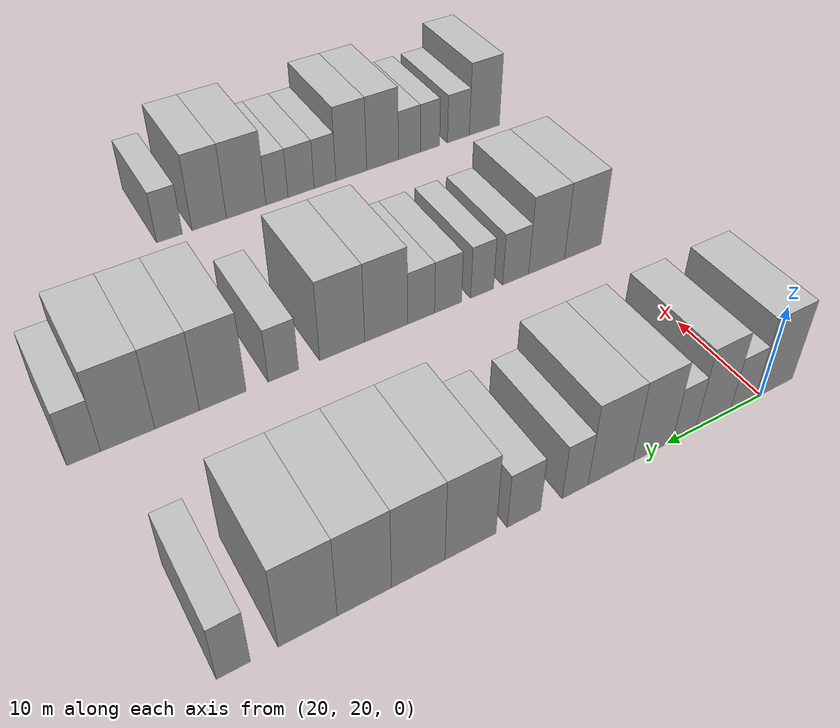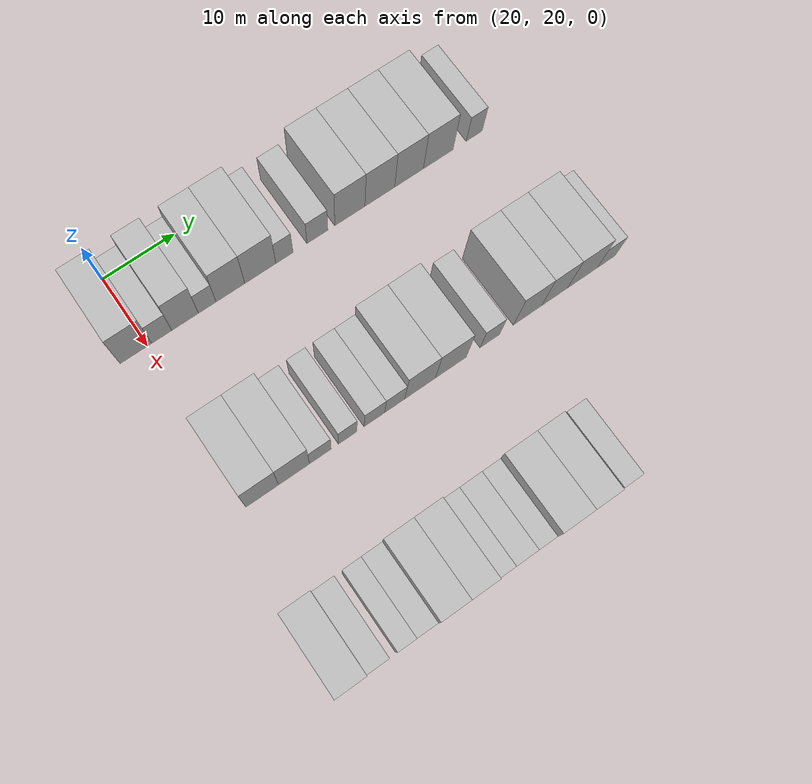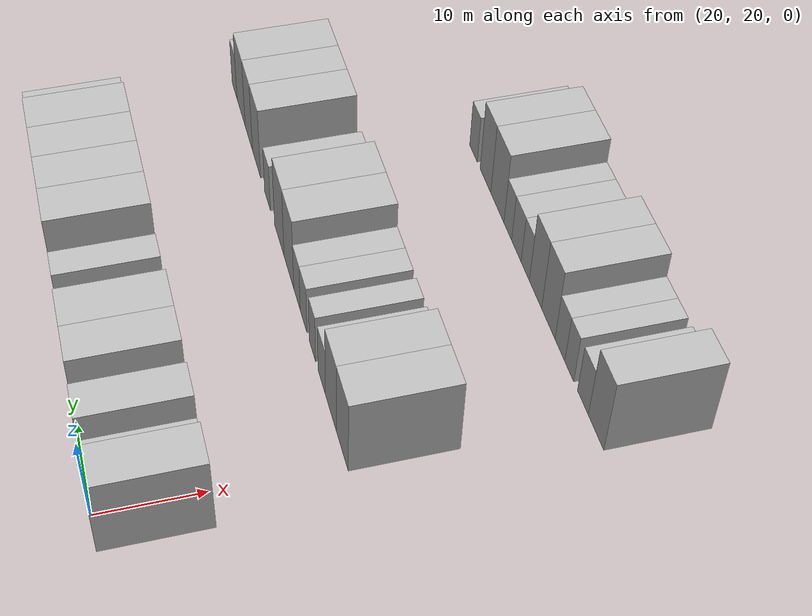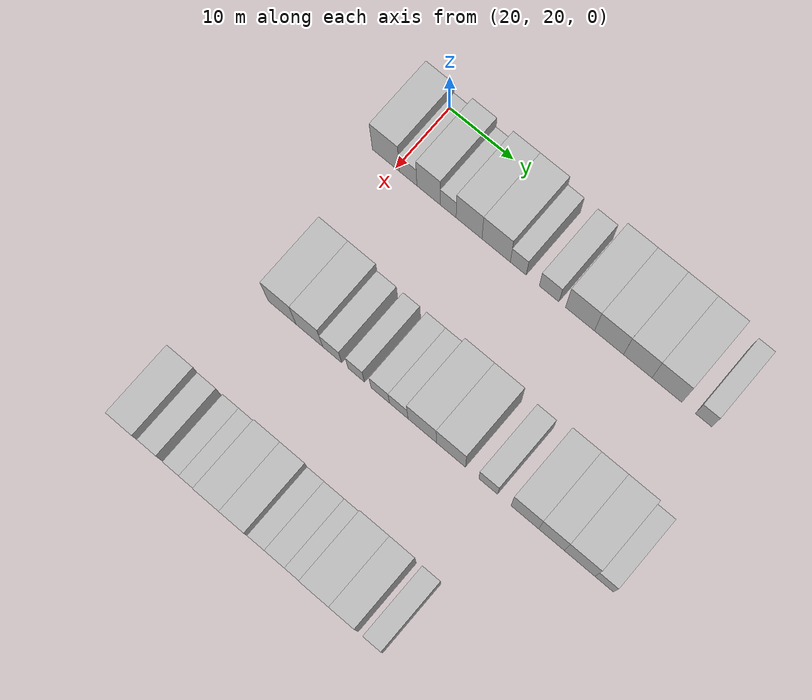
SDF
<sdf version="1.6">
 <world name="default">
  <model name="building_100">
   <static>1</static>
   <pose>25.0000 18.4840 0 0.000000 0.000000 0.000000</pose>
   <link name="link">
    <pose>0 0 4.50 0 0 0</pose>
    <collision name="collision"><geometry><box><size>10.0000 4.2667 9.0000</size></box></geometry></collision>
    <visual name="visual">
     <cast_shadows>0</cast_shadows>
     <geometry><box><size>10.0000 4.2667 9.0000</size></box></geometry>
     <material>
      <script>
       <uri>model://HANNAS_wall/materials/scripts</uri>
       <uri>model://HANNAS_wall/materials/textures</uri>
       <name>vrc/HANNAS_wall</name>
      </script>
     </material>
    </visual>
   </link>
  </model>
  <model name="building_101">
   <static>1</static>
   <pose>25.0000 21.9863 0 0.000000 0.000000 0.000000</pose>
   <link name="link">
    <pose>0 0 3.00 0 0 0</pose>
    <collision name="collision"><geometry><box><size>10.0000 2.7380 6.0000</size></box></geometry></collision>
    <visual name="visual">
     <cast_shadows>0</cast_shadows>
     <geometry><box><size>10.0000 2.7380 6.0000</size></box></geometry>
     <material>
      <script>
       <uri>model://HANNAS_wall/materials/scripts</uri>
       <uri>model://HANNAS_wall/materials/textures</uri>
       <name>vrc/HANNAS_wall</name>
      </script>
     </material>
    </visual>
   </link>
  </model>
  <model name="building_102">
   <static>1</static>
   <pose>25.0000 25.1922 0 0.000000 0.000000 0.000000</pose>
   <link name="link">
    <pose>0 0 4.50 0 0 0</pose>
    <collision name="collision"><geometry><box><size>10.0000 3.6737 9.0000</size></box></geometry></collision>
    <visual name="visual">
     <cast_shadows>0</cast_shadows>
     <geometry><box><size>10.0000 3.6737 9.0000</size></box></geometry>
     <material>
      <script>
       <uri>model://HANNAS_wall/materials/scripts</uri>
       <uri>model://HANNAS_wall/materials/textures</uri>
       <name>vrc/HANNAS_wall</name>
      </script>
     </material>
    </visual>
   </link>
  </model>
  <model name="building_103">
   <static>1</static>
   <pose>25.0000 28.2496 0 0.000000 0.000000 0.000000</pose>
   <link name="link">
    <pose>0 0 3.00 0 0 0</pose>
    <collision name="collision"><geometry><box><size>10.0000 2.4411 6.0000</size></box></geometry></collision>
    <visual name="visual">
     <cast_shadows>0</cast_shadows>
     <geometry><box><size>10.0000 2.4411 6.0000</size></box></geometry>
     <material>
      <script>
       <uri>model://HANNAS_wall/materials/scripts</uri>
       <uri>model://HANNAS_wall/materials/textures</uri>
       <name>vrc/HANNAS_wall</name>
      </script>
     </material>
    </visual>
   </link>
  </model>
  <model name="building_104">
   <static>1</static>
   <pose>25.0000 31.4704 0 0.000000 0.000000 0.000000</pose>
   <link name="link">
    <pose>0 0 4.50 0 0 0</pose>
    <collision name="collision"><geometry><box><size>10.0000 4.0004 9.0000</size></box></geometry></collision>
    <visual name="visual">
     <cast_shadows>0</cast_shadows>
     <geometry><box><size>10.0000 4.0004 9.0000</size></box></geometry>
     <material>
      <script>
       <uri>model://HANNAS_wall/materials/scripts</uri>
       <uri>model://HANNAS_wall/materials/textures</uri>
       <name>vrc/HANNAS_wall</name>
      </script>
     </material>
    </visual>
   </link>
  </model>
  <model name="building_105">
   <static>1</static>
   <pose>25.0000 35.6618 0 0.000000 0.000000 0.000000</pose>
   <link name="link">
    <pose>0 0 4.50 0 0 0</pose>
    <collision name="collision"><geometry><box><size>10.0000 4.3824 9.0000</size></box></geometry></collision>
    <visual name="visual">
     <cast_shadows>0</cast_shadows>
     <geometry><box><size>10.0000 4.3824 9.0000</size></box></geometry>
     <material>
      <script>
       <uri>model://HANNAS_wall/materials/scripts</uri>
       <uri>model://HANNAS_wall/materials/textures</uri>
       <name>vrc/HANNAS_wall</name>
      </script>
     </material>
    </visual>
   </link>
  </model>
  <model name="building_106">
   <static>1</static>
   <pose>25.0000 39.0703 0 0.000000 0.000000 0.000000</pose>
   <link name="link">
    <pose>0 0 3.00 0 0 0</pose>
    <collision name="collision"><geometry><box><size>10.0000 2.4347 6.0000</size></box></geometry></collision>
    <visual name="visual">
     <cast_shadows>0</cast_shadows>
     <geometry><box><size>10.0000 2.4347 6.0000</size></box></geometry>
     <material>
      <script>
       <uri>model://HANNAS_wall/materials/scripts</uri>
       <uri>model://HANNAS_wall/materials/textures</uri>
       <name>vrc/HANNAS_wall</name>
      </script>
     </material>
    </visual>
   </link>
  </model>
  <model name="building_107">
   <static>1</static>
   <pose>25.0000 43.7862 0 0.000000 0.000000 0.000000</pose>
   <link name="link">
    <pose>0 0 3.00 0 0 0</pose>
    <collision name="collision"><geometry><box><size>10.0000 2.9971 6.0000</size></box></geometry></collision>
    <visual name="visual">
     <cast_shadows>0</cast_shadows>
     <geometry><box><size>10.0000 2.9971 6.0000</size></box></geometry>
     <material>
      <script>
       <uri>model://HANNAS_wall/materials/scripts</uri>
       <uri>model://HANNAS_wall/materials/textures</uri>
       <name>vrc/HANNAS_wall</name>
      </script>
     </material>
    </visual>
   </link>
  </model>
  <model name="building_108">
   <static>1</static>
   <pose>25.0000 48.4741 0 0.000000 0.000000 0.000000</pose>
   <link name="link">
    <pose>0 0 4.50 0 0 0</pose>
    <collision name="collision"><geometry><box><size>10.0000 4.3787 9.0000</size></box></geometry></collision>
    <visual name="visual">
     <cast_shadows>0</cast_shadows>
     <geometry><box><size>10.0000 4.3787 9.0000</size></box></geometry>
     <material>
      <script>
       <uri>model://HANNAS_wall/materials/scripts</uri>
       <uri>model://HANNAS_wall/materials/textures</uri>
       <name>vrc/HANNAS_wall</name>
      </script>
     </material>
    </visual>
   </link>
  </model>
  <model name="building_109">
   <static>1</static>
   <pose>25.0000 52.8541 0 0.000000 0.000000 0.000000</pose>
   <link name="link">
    <pose>0 0 4.50 0 0 0</pose>
    <collision name="collision"><geometry><box><size>10.0000 4.3813 9.0000</size></box></geometry></collision>
    <visual name="visual">
     <cast_shadows>0</cast_shadows>
     <geometry><box><size>10.0000 4.3813 9.0000</size></box></geometry>
     <material>
      <script>
       <uri>model://HANNAS_wall/materials/scripts</uri>
       <uri>model://HANNAS_wall/materials/textures</uri>
       <name>vrc/HANNAS_wall</name>
      </script>
     </material>
    </visual>
   </link>
  </model>
  <model name="building_110">
   <static>1</static>
   <pose>25.0000 57.1756 0 0.000000 0.000000 0.000000</pose>
   <link name="link">
    <pose>0 0 4.50 0 0 0</pose>
    <collision name="collision"><geometry><box><size>10.0000 4.2616 9.0000</size></box></geometry></collision>
    <visual name="visual">
     <cast_shadows>0</cast_shadows>
     <geometry><box><size>10.0000 4.2616 9.0000</size></box></geometry>
     <material>
      <script>
       <uri>model://HANNAS_wall/materials/scripts</uri>
       <uri>model://HANNAS_wall/materials/textures</uri>
       <name>vrc/HANNAS_wall</name>
      </script>
     </material>
    </visual>
   </link>
  </model>
  <model name="building_111">
   <static>1</static>
   <pose>25.0000 61.5272 0 0.000000 0.000000 0.000000</pose>
   <link name="link">
    <pose>0 0 4.50 0 0 0</pose>
    <collision name="collision"><geometry><box><size>10.0000 4.4417 9.0000</size></box></geometry></collision>
    <visual name="visual">
     <cast_shadows>0</cast_shadows>
     <geometry><box><size>10.0000 4.4417 9.0000</size></box></geometry>
     <material>
      <script>
       <uri>model://HANNAS_wall/materials/scripts</uri>
       <uri>model://HANNAS_wall/materials/textures</uri>
       <name>vrc/HANNAS_wall</name>
      </script>
     </material>
    </visual>
   </link>
  </model>
  <model name="building_112">
   <static>1</static>
   <pose>25.0000 66.9552 0 0.000000 0.000000 0.000000</pose>
   <link name="link">
    <pose>0 0 3.00 0 0 0</pose>
    <collision name="collision"><geometry><box><size>10.0000 2.4143 6.0000</size></box></geometry></collision>
    <visual name="visual">
     <cast_shadows>0</cast_shadows>
     <geometry><box><size>10.0000 2.4143 6.0000</size></box></geometry>
     <material>
      <script>
       <uri>model://HANNAS_wall/materials/scripts</uri>
       <uri>model://HANNAS_wall/materials/textures</uri>
       <name>vrc/HANNAS_wall</name>
      </script>
     </material>
    </visual>
   </link>
  </model>
  <model name="building_288">
   <static>1</static>
   <pose>47.0000 21.4338 0 0.000000 0.000000 0.000000</pose>
   <link name="link">
    <pose>0 0 4.50 0 0 0</pose>
    <collision name="collision"><geometry><box><size>10.0000 4.3492 9.0000</size></box></geometry></collision>
    <visual name="visual">
     <cast_shadows>0</cast_shadows>
     <geometry><box><size>10.0000 4.3492 9.0000</size></box></geometry>
     <material>
      <script>
       <uri>model://HANNAS_wall/materials/scripts</uri>
       <uri>model://HANNAS_wall/materials/textures</uri>
       <name>vrc/HANNAS_wall</name>
      </script>
     </material>
    </visual>
   </link>
  </model>
  <model name="building_289">
   <static>1</static>
   <pose>47.0000 25.6853 0 0.000000 0.000000 0.000000</pose>
   <link name="link">
    <pose>0 0 4.50 0 0 0</pose>
    <collision name="collision"><geometry><box><size>10.0000 4.1538 9.0000</size></box></geometry></collision>
    <visual name="visual">
     <cast_shadows>0</cast_shadows>
     <geometry><box><size>10.0000 4.1538 9.0000</size></box></geometry>
     <material>
      <script>
       <uri>model://HANNAS_wall/materials/scripts</uri>
       <uri>model://HANNAS_wall/materials/textures</uri>
       <name>vrc/HANNAS_wall</name>
      </script>
     </material>
    </visual>
   </link>
  </model>
  <model name="building_290">
   <static>1</static>
   <pose>47.0000 29.2273 0 0.000000 0.000000 0.000000</pose>
   <link name="link">
    <pose>0 0 3.00 0 0 0</pose>
    <collision name="collision"><geometry><box><size>10.0000 2.9302 6.0000</size></box></geometry></collision>
    <visual name="visual">
     <cast_shadows>0</cast_shadows>
     <geometry><box><size>10.0000 2.9302 6.0000</size></box></geometry>
     <material>
      <script>
       <uri>model://HANNAS_wall/materials/scripts</uri>
       <uri>model://HANNAS_wall/materials/textures</uri>
       <name>vrc/HANNAS_wall</name>
      </script>
     </material>
    </visual>
   </link>
  </model>
  <model name="building_291">
   <static>1</static>
   <pose>47.0000 32.9473 0 0.000000 0.000000 0.000000</pose>
   <link name="link">
    <pose>0 0 3.00 0 0 0</pose>
    <collision name="collision"><geometry><box><size>10.0000 2.5098 6.0000</size></box></geometry></collision>
    <visual name="visual">
     <cast_shadows>0</cast_shadows>
     <geometry><box><size>10.0000 2.5098 6.0000</size></box></geometry>
     <material>
      <script>
       <uri>model://HANNAS_wall/materials/scripts</uri>
       <uri>model://HANNAS_wall/materials/textures</uri>
       <name>vrc/HANNAS_wall</name>
      </script>
     </material>
    </visual>
   </link>
  </model>
  <model name="building_292">
   <static>1</static>
   <pose>47.0000 36.6264 0 0.000000 0.000000 0.000000</pose>
   <link name="link">
    <pose>0 0 3.00 0 0 0</pose>
    <collision name="collision"><geometry><box><size>10.0000 2.8484 6.0000</size></box></geometry></collision>
    <visual name="visual">
     <cast_shadows>0</cast_shadows>
     <geometry><box><size>10.0000 2.8484 6.0000</size></box></geometry>
     <material>
      <script>
       <uri>model://HANNAS_wall/materials/scripts</uri>
       <uri>model://HANNAS_wall/materials/textures</uri>
       <name>vrc/HANNAS_wall</name>
      </script>
     </material>
    </visual>
   </link>
  </model>
  <model name="building_293">
   <static>1</static>
   <pose>47.0000 39.4523 0 0.000000 0.000000 0.000000</pose>
   <link name="link">
    <pose>0 0 3.00 0 0 0</pose>
    <collision name="collision"><geometry><box><size>10.0000 2.8034 6.0000</size></box></geometry></collision>
    <visual name="visual">
     <cast_shadows>0</cast_shadows>
     <geometry><box><size>10.0000 2.8034 6.0000</size></box></geometry>
     <material>
      <script>
       <uri>model://HANNAS_wall/materials/scripts</uri>
       <uri>model://HANNAS_wall/materials/textures</uri>
       <name>vrc/HANNAS_wall</name>
      </script>
     </material>
    </visual>
   </link>
  </model>
  <model name="building_294">
   <static>1</static>
   <pose>47.0000 43.0053 0 0.000000 0.000000 0.000000</pose>
   <link name="link">
    <pose>0 0 4.50 0 0 0</pose>
    <collision name="collision"><geometry><box><size>10.0000 4.3025 9.0000</size></box></geometry></collision>
    <visual name="visual">
     <cast_shadows>0</cast_shadows>
     <geometry><box><size>10.0000 4.3025 9.0000</size></box></geometry>
     <material>
      <script>
       <uri>model://HANNAS_wall/materials/scripts</uri>
       <uri>model://HANNAS_wall/materials/textures</uri>
       <name>vrc/HANNAS_wall</name>
      </script>
     </material>
    </visual>
   </link>
  </model>
  <model name="building_295">
   <static>1</static>
   <pose>47.0000 47.3461 0 0.000000 0.000000 0.000000</pose>
   <link name="link">
    <pose>0 0 4.50 0 0 0</pose>
    <collision name="collision"><geometry><box><size>10.0000 4.3790 9.0000</size></box></geometry></collision>
    <visual name="visual">
     <cast_shadows>0</cast_shadows>
     <geometry><box><size>10.0000 4.3790 9.0000</size></box></geometry>
     <material>
      <script>
       <uri>model://HANNAS_wall/materials/scripts</uri>
       <uri>model://HANNAS_wall/materials/textures</uri>
       <name>vrc/HANNAS_wall</name>
      </script>
     </material>
    </visual>
   </link>
  </model>
  <model name="building_296">
   <static>1</static>
   <pose>47.0000 52.9402 0 0.000000 0.000000 0.000000</pose>
   <link name="link">
    <pose>0 0 3.00 0 0 0</pose>
    <collision name="collision"><geometry><box><size>10.0000 2.8092 6.0000</size></box></geometry></collision>
    <visual name="visual">
     <cast_shadows>0</cast_shadows>
     <geometry><box><size>10.0000 2.8092 6.0000</size></box></geometry>
     <material>
      <script>
       <uri>model://HANNAS_wall/materials/scripts</uri>
       <uri>model://HANNAS_wall/materials/textures</uri>
       <name>vrc/HANNAS_wall</name>
      </script>
     </material>
    </visual>
   </link>
  </model>
  <model name="building_297">
   <static>1</static>
   <pose>47.0000 58.4036 0 0.000000 0.000000 0.000000</pose>
   <link name="link">
    <pose>0 0 4.50 0 0 0</pose>
    <collision name="collision"><geometry><box><size>10.0000 4.1176 9.0000</size></box></geometry></collision>
    <visual name="visual">
     <cast_shadows>0</cast_shadows>
     <geometry><box><size>10.0000 4.1176 9.0000</size></box></geometry>
     <material>
      <script>
       <uri>model://HANNAS_wall/materials/scripts</uri>
       <uri>model://HANNAS_wall/materials/textures</uri>
       <name>vrc/HANNAS_wall</name>
      </script>
     </material>
    </visual>
   </link>
  </model>
  <model name="building_298">
   <static>1</static>
   <pose>47.0000 62.3664 0 0.000000 0.000000 0.000000</pose>
   <link name="link">
    <pose>0 0 4.50 0 0 0</pose>
    <collision name="collision"><geometry><box><size>10.0000 3.8080 9.0000</size></box></geometry></collision>
    <visual name="visual">
     <cast_shadows>0</cast_shadows>
     <geometry><box><size>10.0000 3.8080 9.0000</size></box></geometry>
     <material>
      <script>
       <uri>model://HANNAS_wall/materials/scripts</uri>
       <uri>model://HANNAS_wall/materials/textures</uri>
       <name>vrc/HANNAS_wall</name>
      </script>
     </material>
    </visual>
   </link>
  </model>
  <model name="building_299">
   <static>1</static>
   <pose>47.0000 66.4973 0 0.000000 0.000000 0.000000</pose>
   <link name="link">
    <pose>0 0 4.50 0 0 0</pose>
    <collision name="collision"><geometry><box><size>10.0000 4.4540 9.0000</size></box></geometry></collision>
    <visual name="visual">
     <cast_shadows>0</cast_shadows>
     <geometry><box><size>10.0000 4.4540 9.0000</size></box></geometry>
     <material>
      <script>
       <uri>model://HANNAS_wall/materials/scripts</uri>
       <uri>model://HANNAS_wall/materials/textures</uri>
       <name>vrc/HANNAS_wall</name>
      </script>
     </material>
    </visual>
   </link>
  </model>
  <model name="building_300">
   <static>1</static>
   <pose>47.0000 70.0728 0 0.000000 0.000000 0.000000</pose>
   <link name="link">
    <pose>0 0 3.00 0 0 0</pose>
    <collision name="collision"><geometry><box><size>10.0000 2.6970 6.0000</size></box></geometry></collision>
    <visual name="visual">
     <cast_shadows>0</cast_shadows>
     <geometry><box><size>10.0000 2.6970 6.0000</size></box></geometry>
     <material>
      <script>
       <uri>model://HANNAS_wall/materials/scripts</uri>
       <uri>model://HANNAS_wall/materials/textures</uri>
       <name>vrc/HANNAS_wall</name>
      </script>
     </material>
    </visual>
   </link>
  </model>
  <model name="building_479">
   <static>1</static>
   <pose>69.0000 18.1203 0 0.000000 0.000000 0.000000</pose>
   <link name="link">
    <pose>0 0 4.50 0 0 0</pose>
    <collision name="collision"><geometry><box><size>10.0000 3.9423 9.0000</size></box></geometry></collision>
    <visual name="visual">
     <cast_shadows>0</cast_shadows>
     <geometry><box><size>10.0000 3.9423 9.0000</size></box></geometry>
     <material>
      <script>
       <uri>model://HANNAS_wall/materials/scripts</uri>
       <uri>model://HANNAS_wall/materials/textures</uri>
       <name>vrc/HANNAS_wall</name>
      </script>
     </material>
    </visual>
   </link>
  </model>
  <model name="building_480">
   <static>1</static>
   <pose>69.0000 21.5104 0 0.000000 0.000000 0.000000</pose>
   <link name="link">
    <pose>0 0 3.00 0 0 0</pose>
    <collision name="collision"><geometry><box><size>10.0000 2.8379 6.0000</size></box></geometry></collision>
    <visual name="visual">
     <cast_shadows>0</cast_shadows>
     <geometry><box><size>10.0000 2.8379 6.0000</size></box></geometry>
     <material>
      <script>
       <uri>model://HANNAS_wall/materials/scripts</uri>
       <uri>model://HANNAS_wall/materials/textures</uri>
       <name>vrc/HANNAS_wall</name>
      </script>
     </material>
    </visual>
   </link>
  </model>
  <model name="building_481">
   <static>1</static>
   <pose>69.0000 25.1404 0 0.000000 0.000000 0.000000</pose>
   <link name="link">
    <pose>0 0 3.00 0 0 0</pose>
    <collision name="collision"><geometry><box><size>10.0000 2.4220 6.0000</size></box></geometry></collision>
    <visual name="visual">
     <cast_shadows>0</cast_shadows>
     <geometry><box><size>10.0000 2.4220 6.0000</size></box></geometry>
     <material>
      <script>
       <uri>model://HANNAS_wall/materials/scripts</uri>
       <uri>model://HANNAS_wall/materials/textures</uri>
       <name>vrc/HANNAS_wall</name>
      </script>
     </material>
    </visual>
   </link>
  </model>
  <model name="building_482">
   <static>1</static>
   <pose>69.0000 27.7045 0 0.000000 0.000000 0.000000</pose>
   <link name="link">
    <pose>0 0 3.00 0 0 0</pose>
    <collision name="collision"><geometry><box><size>10.0000 2.7062 6.0000</size></box></geometry></collision>
    <visual name="visual">
     <cast_shadows>0</cast_shadows>
     <geometry><box><size>10.0000 2.7062 6.0000</size></box></geometry>
     <material>
      <script>
       <uri>model://HANNAS_wall/materials/scripts</uri>
       <uri>model://HANNAS_wall/materials/textures</uri>
       <name>vrc/HANNAS_wall</name>
      </script>
     </material>
    </visual>
   </link>
  </model>
  <model name="building_483">
   <static>1</static>
   <pose>69.0000 30.9823 0 0.000000 0.000000 0.000000</pose>
   <link name="link">
    <pose>0 0 4.50 0 0 0</pose>
    <collision name="collision"><geometry><box><size>10.0000 3.8494 9.0000</size></box></geometry></collision>
    <visual name="visual">
     <cast_shadows>0</cast_shadows>
     <geometry><box><size>10.0000 3.8494 9.0000</size></box></geometry>
     <material>
      <script>
       <uri>model://HANNAS_wall/materials/scripts</uri>
       <uri>model://HANNAS_wall/materials/textures</uri>
       <name>vrc/HANNAS_wall</name>
      </script>
     </material>
    </visual>
   </link>
  </model>
  <model name="building_484">
   <static>1</static>
   <pose>69.0000 34.7306 0 0.000000 0.000000 0.000000</pose>
   <link name="link">
    <pose>0 0 4.50 0 0 0</pose>
    <collision name="collision"><geometry><box><size>10.0000 3.6471 9.0000</size></box></geometry></collision>
    <visual name="visual">
     <cast_shadows>0</cast_shadows>
     <geometry><box><size>10.0000 3.6471 9.0000</size></box></geometry>
     <material>
      <script>
       <uri>model://HANNAS_wall/materials/scripts</uri>
       <uri>model://HANNAS_wall/materials/textures</uri>
       <name>vrc/HANNAS_wall</name>
      </script>
     </material>
    </visual>
   </link>
  </model>
  <model name="building_485">
   <static>1</static>
   <pose>69.0000 37.8052 0 0.000000 0.000000 0.000000</pose>
   <link name="link">
    <pose>0 0 3.00 0 0 0</pose>
    <collision name="collision"><geometry><box><size>10.0000 2.5021 6.0000</size></box></geometry></collision>
    <visual name="visual">
     <cast_shadows>0</cast_shadows>
     <geometry><box><size>10.0000 2.5021 6.0000</size></box></geometry>
     <material>
      <script>
       <uri>model://HANNAS_wall/materials/scripts</uri>
       <uri>model://HANNAS_wall/materials/textures</uri>
       <name>vrc/HANNAS_wall</name>
      </script>
     </material>
    </visual>
   </link>
  </model>
  <model name="building_486">
   <static>1</static>
   <pose>69.0000 40.5392 0 0.000000 0.000000 0.000000</pose>
   <link name="link">
    <pose>0 0 3.00 0 0 0</pose>
    <collision name="collision"><geometry><box><size>10.0000 2.9659 6.0000</size></box></geometry></collision>
    <visual name="visual">
     <cast_shadows>0</cast_shadows>
     <geometry><box><size>10.0000 2.9659 6.0000</size></box></geometry>
     <material>
      <script>
       <uri>model://HANNAS_wall/materials/scripts</uri>
       <uri>model://HANNAS_wall/materials/textures</uri>
       <name>vrc/HANNAS_wall</name>
      </script>
     </material>
    </visual>
   </link>
  </model>
  <model name="building_487">
   <static>1</static>
   <pose>69.0000 43.2446 0 0.000000 0.000000 0.000000</pose>
   <link name="link">
    <pose>0 0 3.00 0 0 0</pose>
    <collision name="collision"><geometry><box><size>10.0000 2.4449 6.0000</size></box></geometry></collision>
    <visual name="visual">
     <cast_shadows>0</cast_shadows>
     <geometry><box><size>10.0000 2.4449 6.0000</size></box></geometry>
     <material>
      <script>
       <uri>model://HANNAS_wall/materials/scripts</uri>
       <uri>model://HANNAS_wall/materials/textures</uri>
       <name>vrc/HANNAS_wall</name>
      </script>
     </material>
    </visual>
   </link>
  </model>
  <model name="building_488">
   <static>1</static>
   <pose>69.0000 46.6145 0 0.000000 0.000000 0.000000</pose>
   <link name="link">
    <pose>0 0 4.50 0 0 0</pose>
    <collision name="collision"><geometry><box><size>10.0000 4.2950 9.0000</size></box></geometry></collision>
    <visual name="visual">
     <cast_shadows>0</cast_shadows>
     <geometry><box><size>10.0000 4.2950 9.0000</size></box></geometry>
     <material>
      <script>
       <uri>model://HANNAS_wall/materials/scripts</uri>
       <uri>model://HANNAS_wall/materials/textures</uri>
       <name>vrc/HANNAS_wall</name>
      </script>
     </material>
    </visual>
   </link>
  </model>
  <model name="building_489">
   <static>1</static>
   <pose>69.0000 50.5753 0 0.000000 0.000000 0.000000</pose>
   <link name="link">
    <pose>0 0 4.50 0 0 0</pose>
    <collision name="collision"><geometry><box><size>10.0000 3.6266 9.0000</size></box></geometry></collision>
    <visual name="visual">
     <cast_shadows>0</cast_shadows>
     <geometry><box><size>10.0000 3.6266 9.0000</size></box></geometry>
     <material>
      <script>
       <uri>model://HANNAS_wall/materials/scripts</uri>
       <uri>model://HANNAS_wall/materials/textures</uri>
       <name>vrc/HANNAS_wall</name>
      </script>
     </material>
    </visual>
   </link>
  </model>
  <model name="building_490">
   <static>1</static>
   <pose>69.0000 54.7057 0 0.000000 0.000000 0.000000</pose>
   <link name="link">
    <pose>0 0 3.00 0 0 0</pose>
    <collision name="collision"><geometry><box><size>10.0000 2.6342 6.0000</size></box></geometry></collision>
    <visual name="visual">
     <cast_shadows>0</cast_shadows>
     <geometry><box><size>10.0000 2.6342 6.0000</size></box></geometry>
     <material>
      <script>
       <uri>model://HANNAS_wall/materials/scripts</uri>
       <uri>model://HANNAS_wall/materials/textures</uri>
       <name>vrc/HANNAS_wall</name>
      </script>
     </material>
    </visual>
   </link>
  </model>
 </world>
</sdf>
